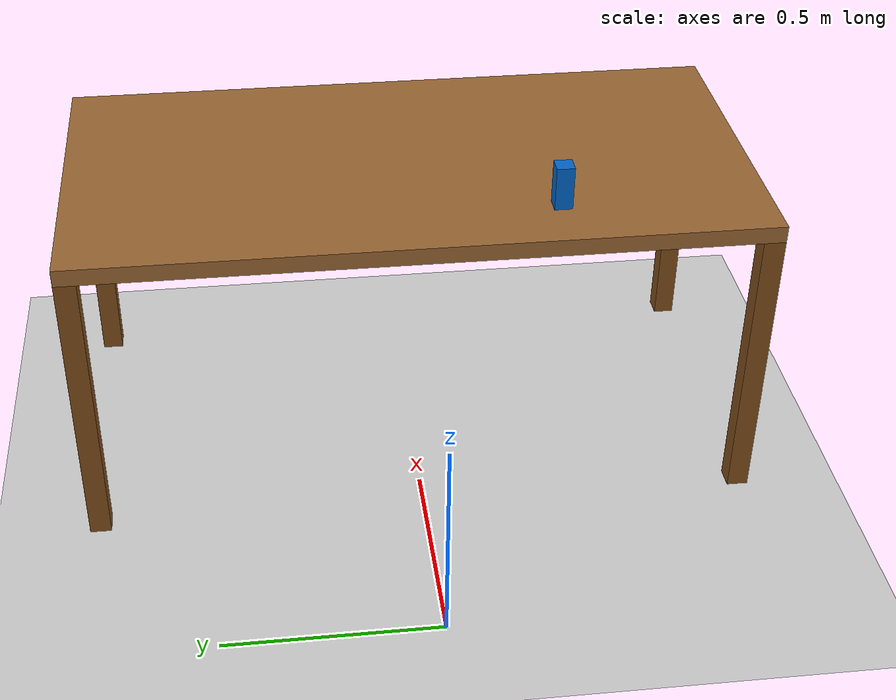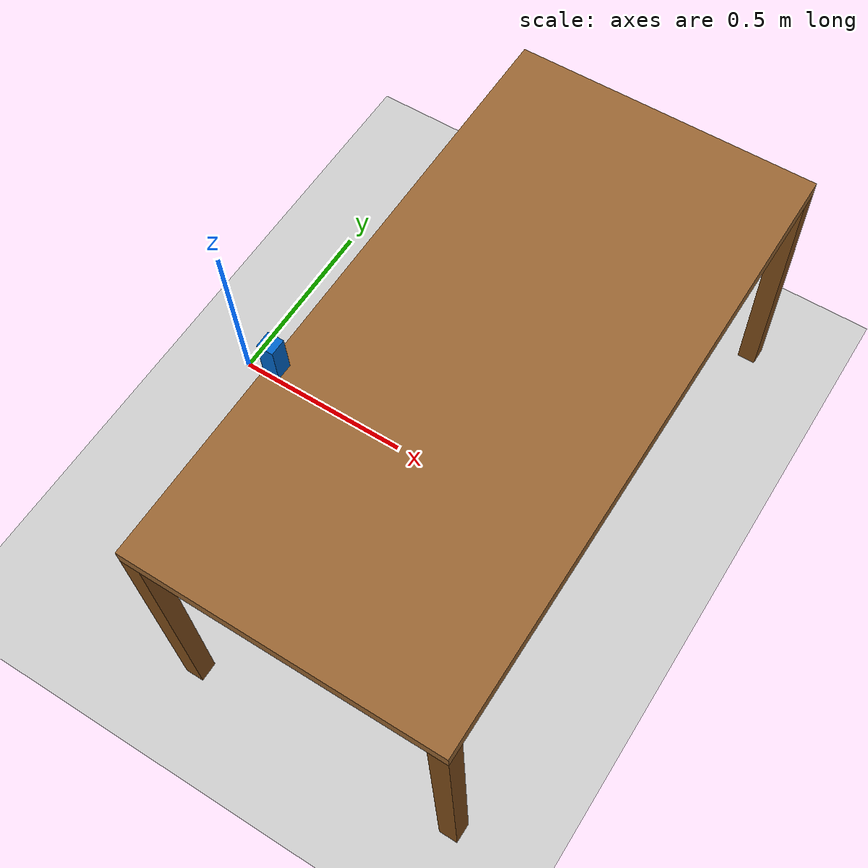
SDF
<?xml version="1.0" ?>

<sdf version="1.6">
  <world name="default">

    <!-- Plugin for simulating physics -->
    <plugin
      filename="gz-sim-physics-system"
      name="gz::sim::systems::Physics">
    </plugin>

    <!-- Plugin for handling user commands -->
    <plugin
      filename="gz-sim-user-commands-system"
      name="gz::sim::systems::UserCommands">
    </plugin>

    <!-- Plugin for broadcasting scene updates -->
    <plugin
      filename="gz-sim-scene-broadcaster-system"
      name="gz::sim::systems::SceneBroadcaster">
    </plugin>

    <!-- Plugin for handling sensors like the LIDAR -->
    <plugin
      filename="gz-sim-sensors-system"
      name="gz::sim::systems::Sensors">
      <render_engine>ogre2</render_engine>
    </plugin>

    <!-- Plugin for IMU -->
    <plugin filename="gz-sim-imu-system"
      name="gz::sim::systems::Imu">
    </plugin>

     <light type="directional" name="sun">
      <cast_shadows>true</cast_shadows>
      <pose>0 0 10 0 0 0</pose>
      <diffuse>1 1 1 1</diffuse>
      <specular>0.5 0.5 0.5 1</specular>
      <attenuation>
        <range>1000</range>
        <constant>0.9</constant>
        <linear>0.01</linear>
        <quadratic>0.001</quadratic>
      </attenuation>
      <direction>-0.5 0.1 -0.9</direction>
    </light>

    <model name="ground_plane">
      <static>true</static>
      <link name="link">
        <collision name="collision">
          <geometry>
            <plane>
              <normal>0 0 1</normal>
              <size>100 100</size>
            </plane>
          </geometry>
          <surface>
            <friction>
              <ode>
                <mu>1.0</mu>
                <mu2>1.0</mu2>
              </ode>
            </friction>
          </surface>
        </collision>
        <visual name="visual">
          <geometry>
            <plane>
              <normal>0 0 1</normal>
              <size>100 100</size>
            </plane>
          </geometry>
          <material>
            <ambient>0.8 0.8 0.8 1</ambient>
            <diffuse>0.8 0.8 0.8 1</diffuse>
            <specular>0.8 0.8 0.8 1</specular>
          </material>
        </visual>
      </link>
    </model>
    <!-- Mesa frente al robot (con 4 patas) -->
    <model name="table">
      <pose>0.8 0 0 0 0 0</pose>
      <static>true</static>

      <!-- Tablero -->
      <link name="table_top">
        <pose>0 0 0.72 0 0 0</pose> <!-- 0.70 + 0.02 (mitad del grosor del tablero) -->
        <collision name="collision">
          <geometry>
            <box>
              <size>0.8 1.6 0.04</size>
            </box>
          </geometry>
        </collision>
        <visual name="visual">
          <geometry>
            <box>
              <size>0.8 1.6 0.04</size>
            </box>
          </geometry>
          <material>
            <ambient>0.6 0.4 0.2 1</ambient>
            <diffuse>0.6 0.4 0.2 1</diffuse>
            <specular>0.8 0.8 0.8 1</specular>
          </material>
        </visual>
      </link>

      <!-- Patas -->
      <!-- Pata 1: frente izquierda -->
      <link name="leg_front_left">
        <pose>0.375 0.775 0.35 0 0 0</pose>
        <collision name="collision">
          <geometry>
            <box><size>0.05 0.05 0.70</size></box>
          </geometry>
        </collision>
        <visual name="visual">
          <geometry>
            <box><size>0.05 0.05 0.70</size></box>
          </geometry>
          <material><ambient>0.5 0.3 0.1 1</ambient></material>
        </visual>
      </link>

      <!-- Pata 2: frente derecha -->
      <link name="leg_front_right">
        <pose>0.375 -0.775 0.35 0 0 0</pose>
        <collision name="collision">
          <geometry>
            <box><size>0.05 0.05 0.70</size></box>
          </geometry>
        </collision>
        <visual name="visual">
          <geometry>
            <box><size>0.05 0.05 0.70</size></box>
          </geometry>
          <material><ambient>0.5 0.3 0.1 1</ambient></material>
        </visual>
      </link>

      <!-- Pata 3: trasera izquierda -->
      <link name="leg_back_left">
        <pose>-0.375 0.775 0.35 0 0 0</pose>
        <collision name="collision">
          <geometry>
            <box><size>0.05 0.05 0.70</size></box>
          </geometry>
        </collision>
        <visual name="visual">
          <geometry>
            <box><size>0.05 0.05 0.70</size></box>
          </geometry>
          <material><ambient>0.5 0.3 0.1 1</ambient></material>
        </visual>
      </link>

      <!-- Pata 4: trasera derecha -->
      <link name="leg_back_right">
        <pose>-0.375 -0.775 0.35 0 0 0</pose>
        <collision name="collision">
          <geometry>
            <box><size>0.05 0.05 0.70</size></box>
          </geometry>
        </collision>
        <visual name="visual">
          <geometry>
            <box><size>0.05 0.05 0.70</size></box>
          </geometry>
          <material><ambient>0.5 0.3 0.1 1</ambient></material>
        </visual>
      </link>
    </model>

    <!-- Objeto móvil encima de la mesa -->
    <model name="moving_object">
      <pose>0.45 -0.3 0.85 0 0 0</pose>
      <static>false</static> <!-- Esto permite que se mueva -->
      <link name="link">
        <inertial>
          <mass>0.1</mass>
          <inertia>
            <ixx>0.0001</ixx>
            <iyy>0.0001</iyy>
            <izz>0.0001</izz>
          </inertia>
        </inertial>
        <collision name="collision">
          <geometry>
            <box>velocity
              <size>0.04 0.04 0.1</size> <!-- Tamaño de la caja -->
            </box>
          </geometry>
          <surface>
            <contact>
              <ode/>
            </contact>
            <bounce/>
            <friction>
              <ode>
                <mu>0.8</mu>
                <mu2>0.8</mu2>
              </ode>
            </friction>
          </surface>
        </collision>
        <visual name="visual">
          <geometry>
            <box>
              <size>0.04 0.04 0.1</size>
            </box>
          </geometry>
          <material>
            <ambient>0 0.4 0.8 1</ambient>
            <diffuse>0 0.4 0.8 1</diffuse>
          </material>
        </visual>
      </link>
    </model>

  </world>
</sdf>
